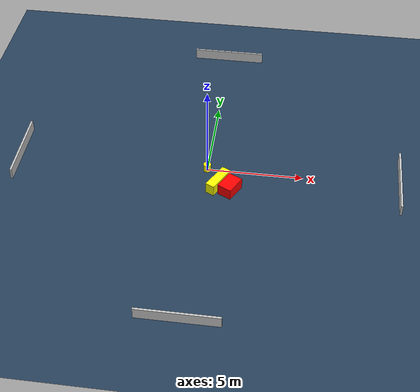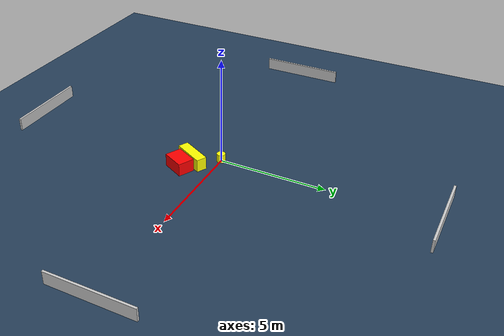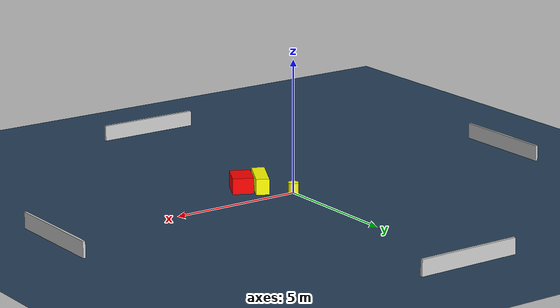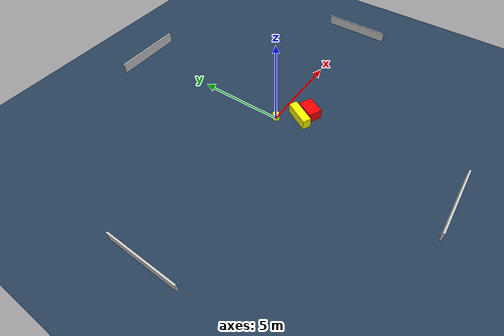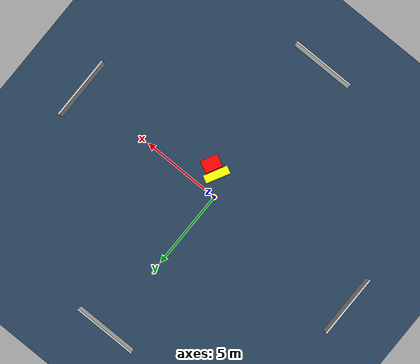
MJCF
<?xml version="1.0" ?>
<mujoco model="generated_environment">
  <option timestep="0.01" integrator="RK4" cone="elliptic"/>
  <default>
    <geom density="1"/>
  </default>
  <asset>
    <texture builtin="gradient" height="3072" name="skybox" rgb1="0.3 0.5 0.7" rgb2="0 0 0" type="skybox" width="512"/>
    <texture builtin="checker" height="300" name="groundplane" rgb1="0.2 0.3 0.4" rgb2="0.1 0.2 0.3" type="2d" width="300"/>
    <material name="groundplane" reflectance="0.2" texrepeat="5 5" texture="groundplane"/>
  </asset>
  <worldbody>
    <light dir="0 0 -1" directional="true" pos="0 0 1.5"/>
    <geom condim="3" friction="0.5 0.005 0.001" material="groundplane" name="floor" pos="0 0 0" size="0 0 0.05" type="plane"/>
    <body name="walls">
      <geom name="wall_1" condim="4" pos="-10.0 0.0 0.3" rgba="0.800000011920929 0.800000011920929 0.800000011920929 1.0" size="0.05 2.0 0.3" type="box"/>
      <geom name="wall_2" condim="4" pos="10.0 0.0 0.3" rgba="0.800000011920929 0.800000011920929 0.800000011920929 1.0" size="0.05 2.0 0.3" type="box"/>
      <geom name="wall_3" condim="4" pos="0.0 -10.0 0.3" rgba="0.800000011920929 0.800000011920929 0.800000011920929 1.0" size="2.0 0.05 0.3" type="box"/>
      <geom name="wall_4" condim="4" pos="0.0 10.0 0.3" rgba="0.800000011920929 0.800000011920929 0.800000011920929 1.0" size="2.0 0.05 0.3" type="box"/>
    </body>
    <body name="robot">
      <joint name="joint_x" type="slide" pos="0 0 0" axis="1 0 0"/>
      <joint name="joint_y" type="slide" pos="0 0 0" axis="0 1 0"/>
      <geom name="robot" type="cylinder" pos="0.0 0.0 0.2" size="0.2 0.2 0.0" mass="5.0" friction="1.0 0.005 0.0001" condim="4" rgba="1.0 1.0 0.0 1.0"/>
    </body>
    <body name="obstacle_1_movable">
      <geom name="obstacle_1_movable" condim="4" pos="0.71174349937258 -1.1006169960967516 0.3" euler="0 0 242.05477494289156" friction="0.0 0.005 0.001" rgba="1.0 1.0 0.0 1.0" size="0.7659204272958196 0.24539365233081073 0.3" type="box" mass="0.1"/>
      <joint type="free"/>
    </body>
    <body name="obstacle_2_static">
      <geom name="obstacle_2_static" condim="4" pos="1.3493399282446286 -1.392650931183125 0.3" euler="0 0 63.00765766488374" friction="0.0 0.005 0.001" rgba="1.0 0.0 0.0 1.0" size="0.5393594841832746 0.38970586649037914 0.3" type="box"/>
    </body>
  </worldbody>
  <actuator>
    <motor name="actuator_x" joint="joint_x" gear="1" ctrlrange="-1 1"/>
    <motor name="actuator_y" joint="joint_y" gear="1" ctrlrange="-1 1"/>
  </actuator>
</mujoco>
